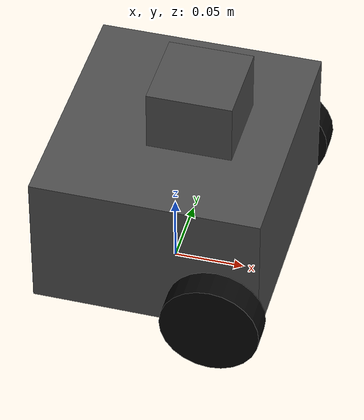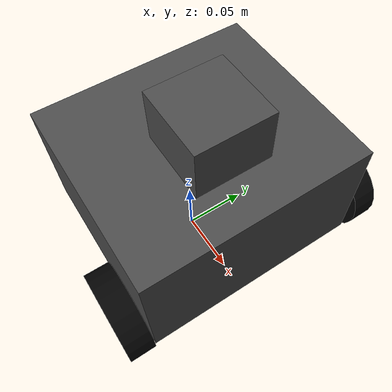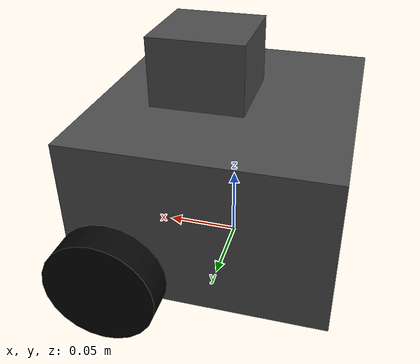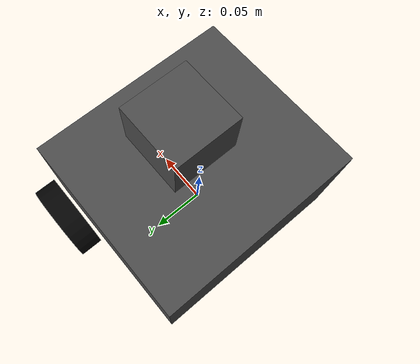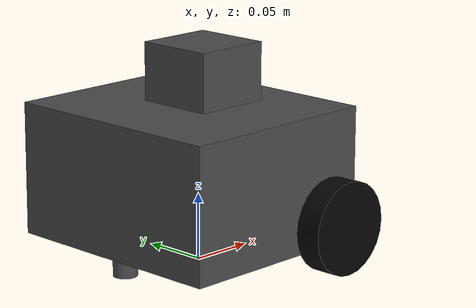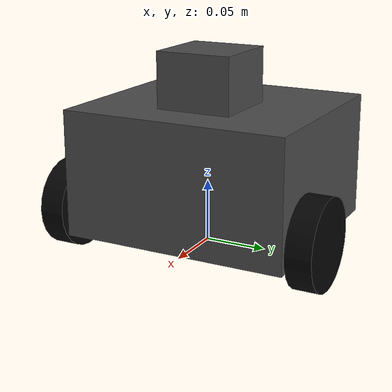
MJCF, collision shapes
<mujoco model="supermarketbot">
  <compiler angle="radian" meshdir="./"/>

  <asset>
    <mesh name="chassis_l1" content_type="model/stl" file="../meshes/chassis_l1.stl" scale="0.001 0.001 0.001"/>
    <mesh name="chassis_l2" content_type="model/stl" file="../meshes/chassis_l2.stl" scale="0.001 0.001 0.001"/>
    <mesh name="chassis_l3" content_type="model/stl" file="../meshes/chassis_l3.stl" scale="0.001 0.001 0.001"/>
    <mesh name="wheel" content_type="model/stl" file="../meshes/wheel.stl" scale="0.001 0.001 0.001"/>
    <mesh name="lidar_base_link" content_type="model/stl" file="../meshes/lidar_base_link.stl" scale="0.001 0.001 0.001"/>
  </asset>

  <worldbody>
    <geom type="mesh" contype="0" conaffinity="0" group="1" density="0" rgba="0.3 0.3 0.3 1" mesh="chassis_l1"/>
    <geom type="mesh" contype="0" conaffinity="0" group="1" density="0" rgba="0.3 0.3 0.3 1" mesh="chassis_l2"/>
    <geom type="mesh" contype="0" conaffinity="0" group="1" density="0" rgba="0.3 0.3 0.3 1" mesh="chassis_l3"/>
    <geom size="0.080325 0.09 0.05" pos="0 0.009 0.066" type="box" rgba="0.3 0.3 0.3 1"/>
    <geom size="0.009 0.01" pos="-0.064 0.0105 0.01" type="cylinder" rgba="0.3 0.3 0.3 1"/>
    <geom size="0.01 0.02 0.01" pos="0.06 0.005 0.09" type="box" contype="0" conaffinity="0" group="1" density="0" rgba="0 0.5 0 1"/>
    <geom pos="0 -9e-06 -0.000115" quat="1 0 0 0" type="mesh" contype="0" conaffinity="0" group="1" density="0" rgba="0.02 0.02 0.02 1" mesh="lidar_base_link"/>
    <geom size="0.02 0.0075" pos="0.015 0.01 0.15" type="cylinder" contype="0" conaffinity="0" group="1" density="0" rgba="0.3 0.3 0.3 1"/>
    <geom size="0.03 0.03 0.03" pos="0.015 0.01 0.13" type="box" rgba="0.3 0.3 0.3 1"/>
    <body name="left_wheel_link" pos="0.051 0.1125 0.034">
      <inertial pos="0 0 0" quat="0.707107 0 0 0.707107" mass="0.2" diaginertia="0.0002 0.0001 0.0001"/>
      <joint name="left_wheel_link_to_chassis_link_joint" pos="0 0 0" axis="0 1 0"/>
      <geom quat="0 0 0 1" type="mesh" contype="0" conaffinity="0" group="1" density="0" rgba="0.02 0.02 0.02 1" mesh="wheel"/>
      <geom size="0.035 0.01" quat="0.707388 0.706825 0 0" type="cylinder" rgba="0.02 0.02 0.02 1"/>
    </body>
    <body name="right_wheel_link" pos="0.051 -0.0925 0.034">
      <inertial pos="0 0 0" quat="0.707107 0 0 0.707107" mass="0.2" diaginertia="0.0002 0.0001 0.0001"/>
      <joint name="right_wheel_link_to_chassis_link_joint" pos="0 0 0" axis="0 1 0"/>
      <geom type="mesh" contype="0" conaffinity="0" group="1" density="0" rgba="0.02 0.02 0.02 1" mesh="wheel"/>
      <geom size="0.035 0.01" quat="0.707388 0.706825 0 0" type="cylinder" rgba="0.02 0.02 0.02 1"/>
    </body>
  </worldbody>
</mujoco>
